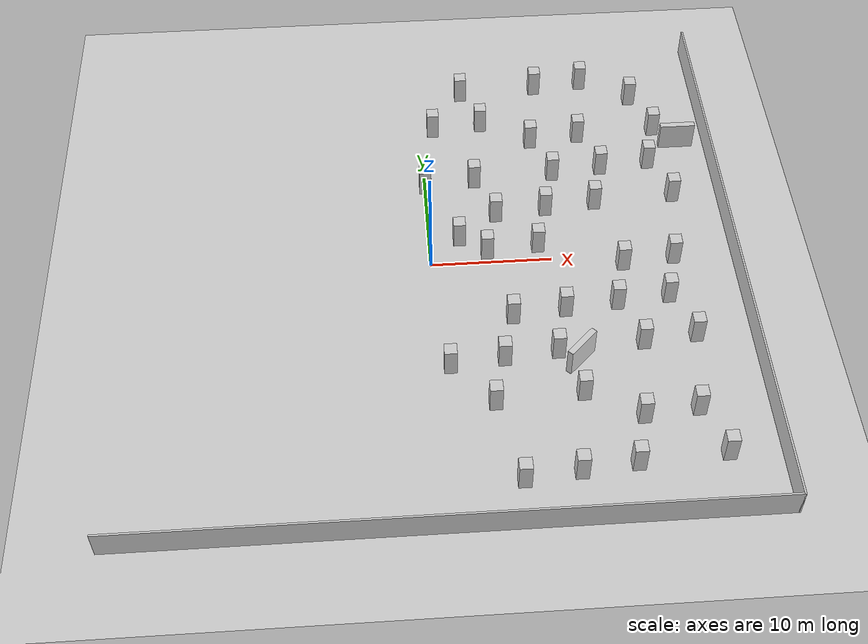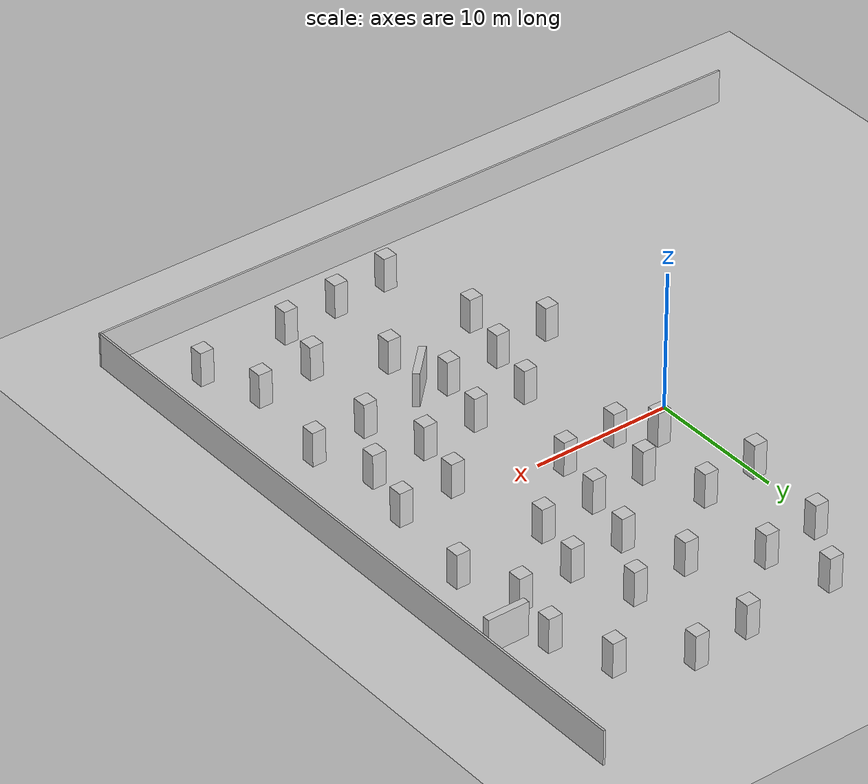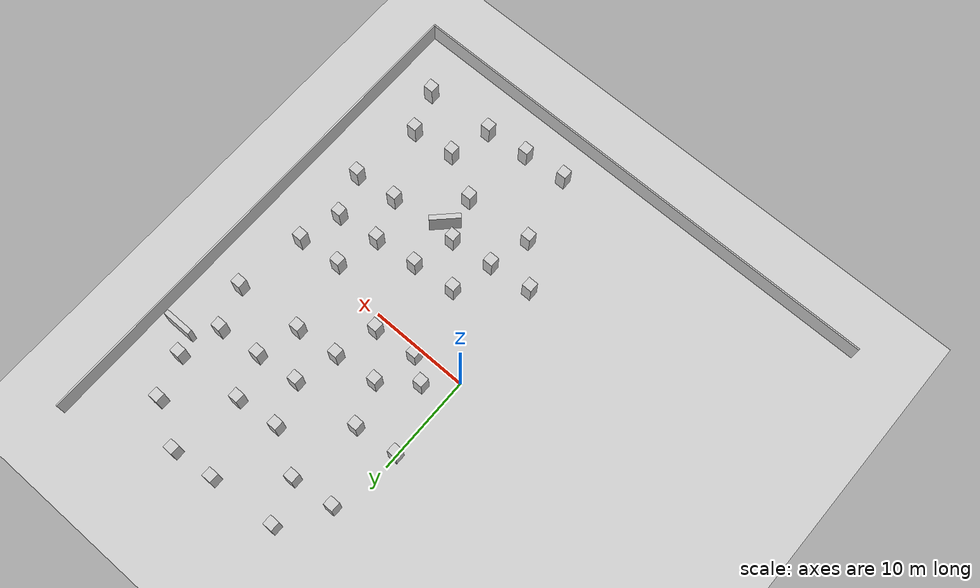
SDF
<sdf version="1.9">
 <world name="default">
  <model name="ground_plane">
   <static>true</static>
   <link name="link">
    <collision name="collision">
     <geometry><plane><normal>0 0 1</normal><size>50 50</size></plane></geometry>
    </collision>
    <visual name="visual">
     <cast_shadows>false</cast_shadows>
     <geometry><plane><normal>0 0 1</normal><size>50 50</size></plane></geometry>
     <material>
      <ambient>0.8 0.8 0.8 1</ambient>
      <diffuse>0.8 0.8 0.8 1</diffuse>
      <specular>0.0 0.0 0.0 1</specular>
      <pbr>
       <metal>
        <albedo_map>file://materials/textures/plank_walls.jpg</albedo_map>
        <roughness>1.0</roughness>
        <metalness>0</metalness>
       </metal>
      </pbr>
     </material>
    </visual>
   </link>
  </model>
  <model name="wall_south">
   <static>true</static>
   <pose>0 -25 0 0 0 0.0</pose>
   <link name="link">
    <collision name="collision">
     <pose>0 0 1.25 0 0 0</pose>
     <geometry><box><size>50.15 0.15 2.5</size></box></geometry>
    </collision>
    <visual name="visual">
     <pose>0 0 1.25 0 0 0</pose>
     <cast_shadows>false</cast_shadows>
     <geometry><box><size>50.15 0.15 2.5</size></box></geometry>
     <material>
      <ambient>0.8 0.8 0.8 1</ambient>
      <diffuse>0.8 0.8 0.8 1</diffuse>
      <specular>0.0 0.0 0.0 1</specular>
      <pbr>
       <metal>
        <albedo_map>file://materials/textures/plaster_bricks.jpg</albedo_map>
        <roughness>1.0</roughness>
        <metalness>0</metalness>
       </metal>
      </pbr>
     </material>
    </visual>
   </link>
  </model>
  <model name="wall_east">
   <static>true</static>
   <pose>25 0 0 0 0 -1.5708</pose>
   <link name="link">
    <collision name="collision">
     <pose>0 0 1.25 0 0 0</pose>
     <geometry><box><size>50.15 0.15 2.5</size></box></geometry>
    </collision>
    <visual name="visual">
     <pose>0 0 1.25 0 0 0</pose>
     <cast_shadows>false</cast_shadows>
     <geometry><box><size>50.15 0.15 2.5</size></box></geometry>
     <material>
      <ambient>0.8 0.8 0.8 1</ambient>
      <diffuse>0.8 0.8 0.8 1</diffuse>
      <specular>0.0 0.0 0.0 1</specular>
      <pbr>
       <metal>
        <albedo_map>file://materials/textures/plaster_bricks.jpg</albedo_map>
        <roughness>1.0</roughness>
        <metalness>0</metalness>
       </metal>
      </pbr>
     </material>
    </visual>
   </link>
  </model>
  <model name="wall_inner_12">
   <static>true</static>
   <pose>22.425 12.700 0 0 0 0.0</pose>
   <link name="link">
    <collision name="collision">
     <pose>0 0 1.25 0 0 0</pose>
     <geometry><box><size>3.0 0.5 2.5</size></box></geometry>
    </collision>
    <visual name="visual">
     <pose>0 0 1.25 0 0 0</pose>
     <cast_shadows>false</cast_shadows>
     <geometry><box><size>3.0 0.5 2.5</size></box></geometry>
     <material>
      <ambient>0.8 0.8 0.8 1</ambient>
      <diffuse>0.8 0.8 0.8 1</diffuse>
      <specular>0.0 0.0 0.0 1</specular>
      <pbr>
       <metal>
        <albedo_map>file://materials/textures/plaster_bricks.jpg</albedo_map>
        <roughness>1.0</roughness>
        <metalness>0</metalness>
       </metal>
      </pbr>
     </material>
    </visual>
   </link>
  </model>
  <model name="wall_inner_13">
   <static>true</static>
   <pose>11.050 -10.550 0 0 0 0.785398</pose>
   <link name="link">
    <collision name="collision">
     <pose>0 0 1.25 0 0 0</pose>
     <geometry><box><size>3.0 0.5 2.5</size></box></geometry>
    </collision>
    <visual name="visual">
     <pose>0 0 1.25 0 0 0</pose>
     <cast_shadows>false</cast_shadows>
     <geometry><box><size>3.0 0.5 2.5</size></box></geometry>
     <material>
      <ambient>0.8 0.8 0.8 1</ambient>
      <diffuse>0.8 0.8 0.8 1</diffuse>
      <specular>0.0 0.0 0.0 1</specular>
      <pbr>
       <metal>
        <albedo_map>file://materials/textures/plaster_bricks.jpg</albedo_map>
        <roughness>1.0</roughness>
        <metalness>0</metalness>
       </metal>
      </pbr>
     </material>
    </visual>
   </link>
  </model>
  <model name="unit_box_38">
   <static>true</static>
   <pose>0.9 -10.6 1.25 0 0 0</pose>
   <link name="link">
    <collision name="collision"><geometry><box><size>1 1 2.5</size></box></geometry></collision>
    <visual name="visual">
     <cast_shadows>false</cast_shadows>
     <geometry><box><size>1 1 2.5</size></box></geometry>
     <material>
      <ambient>0.8 0.8 0.8 1</ambient>
      <diffuse>0.8 0.8 0.8 1</diffuse>
      <specular>0.0 0.0 0.0 1</specular>
      <pbr>
       <metal>
        <albedo_map>file://materials/media/wall3.png</albedo_map>
        <roughness>1.0</roughness>
        <metalness>0</metalness>
       </metal>
      </pbr>
     </material>
    </visual>
   </link>
  </model>
  <model name="unit_box_40">
   <static>true</static>
   <pose>2.5 2.5 1.25 0 0 0</pose>
   <link name="link">
    <collision name="collision"><geometry><box><size>1 1 2.5</size></box></geometry></collision>
    <visual name="visual">
     <cast_shadows>false</cast_shadows>
     <geometry><box><size>1 1 2.5</size></box></geometry>
     <material>
      <ambient>0.8 0.8 0.8 1</ambient>
      <diffuse>0.8 0.8 0.8 1</diffuse>
      <specular>0.0 0.0 0.0 1</specular>
      <pbr>
       <metal>
        <albedo_map>file://materials/media/wall5.png</albedo_map>
        <roughness>1.0</roughness>
        <metalness>0</metalness>
       </metal>
      </pbr>
     </material>
    </visual>
   </link>
  </model>
  <model name="unit_box_42">
   <static>true</static>
   <pose>0.0 8.65 1.25 0 0 0</pose>
   <link name="link">
    <collision name="collision"><geometry><box><size>1 1 2.5</size></box></geometry></collision>
    <visual name="visual">
     <cast_shadows>false</cast_shadows>
     <geometry><box><size>1 1 2.5</size></box></geometry>
     <material>
      <ambient>0.8 0.8 0.8 1</ambient>
      <diffuse>0.8 0.8 0.8 1</diffuse>
      <specular>0.0 0.0 0.0 1</specular>
      <pbr>
       <metal>
        <albedo_map>file://materials/media/wall7.png</albedo_map>
        <roughness>1.0</roughness>
        <metalness>0</metalness>
       </metal>
      </pbr>
     </material>
    </visual>
   </link>
  </model>
  <model name="unit_box_43">
   <static>true</static>
   <pose>1.05 15.6 1.25 0 0 0</pose>
   <link name="link">
    <collision name="collision"><geometry><box><size>1 1 2.5</size></box></geometry></collision>
    <visual name="visual">
     <cast_shadows>false</cast_shadows>
     <geometry><box><size>1 1 2.5</size></box></geometry>
     <material>
      <ambient>0.8 0.8 0.8 1</ambient>
      <diffuse>0.8 0.8 0.8 1</diffuse>
      <specular>0.0 0.0 0.0 1</specular>
      <pbr>
       <metal>
        <albedo_map>file://materials/media/wall8.png</albedo_map>
        <roughness>1.0</roughness>
        <metalness>0</metalness>
       </metal>
      </pbr>
     </material>
    </visual>
   </link>
  </model>
  <model name="unit_box_45">
   <static>true</static>
   <pose>5.6 -21.2 1.25 0 0 0</pose>
   <link name="link">
    <collision name="collision"><geometry><box><size>1 1 2.5</size></box></geometry></collision>
    <visual name="visual">
     <cast_shadows>false</cast_shadows>
     <geometry><box><size>1 1 2.5</size></box></geometry>
     <material>
      <ambient>0.8 0.8 0.8 1</ambient>
      <diffuse>0.8 0.8 0.8 1</diffuse>
      <specular>0.0 0.0 0.0 1</specular>
      <pbr>
       <metal>
        <albedo_map>file://materials/media/wall10.png</albedo_map>
        <roughness>1.0</roughness>
        <metalness>0</metalness>
       </metal>
      </pbr>
     </material>
    </visual>
   </link>
  </model>
  <model name="unit_box_46">
   <static>true</static>
   <pose>4.1 -14.25 1.25 0 0 0</pose>
   <link name="link">
    <collision name="collision"><geometry><box><size>1 1 2.5</size></box></geometry></collision>
    <visual name="visual">
     <cast_shadows>false</cast_shadows>
     <geometry><box><size>1 1 2.5</size></box></geometry>
     <material>
      <ambient>0.8 0.8 0.8 1</ambient>
      <diffuse>0.8 0.8 0.8 1</diffuse>
      <specular>0.0 0.0 0.0 1</specular>
      <pbr>
       <metal>
        <albedo_map>file://materials/media/wall11.png</albedo_map>
        <roughness>1.0</roughness>
        <metalness>0</metalness>
       </metal>
      </pbr>
     </material>
    </visual>
   </link>
  </model>
  <model name="unit_box_47">
   <static>true</static>
   <pose>5.15 -10.15 1.25 0 0 0</pose>
   <link name="link">
    <collision name="collision"><geometry><box><size>1 1 2.5</size></box></geometry></collision>
    <visual name="visual">
     <cast_shadows>false</cast_shadows>
     <geometry><box><size>1 1 2.5</size></box></geometry>
     <material>
      <ambient>0.8 0.8 0.8 1</ambient>
      <diffuse>0.8 0.8 0.8 1</diffuse>
      <specular>0.0 0.0 0.0 1</specular>
      <pbr>
       <metal>
        <albedo_map>file://materials/media/wall12.png</albedo_map>
        <roughness>1.0</roughness>
        <metalness>0</metalness>
       </metal>
      </pbr>
     </material>
    </visual>
   </link>
  </model>
  <model name="unit_box_48">
   <static>true</static>
   <pose>6.2 -6.05 1.25 0 0 0</pose>
   <link name="link">
    <collision name="collision"><geometry><box><size>1 1 2.5</size></box></geometry></collision>
    <visual name="visual">
     <cast_shadows>false</cast_shadows>
     <geometry><box><size>1 1 2.5</size></box></geometry>
     <material>
      <ambient>0.8 0.8 0.8 1</ambient>
      <diffuse>0.8 0.8 0.8 1</diffuse>
      <specular>0.0 0.0 0.0 1</specular>
      <pbr>
       <metal>
        <albedo_map>file://materials/media/wall13.png</albedo_map>
        <roughness>1.0</roughness>
        <metalness>0</metalness>
       </metal>
      </pbr>
     </material>
    </visual>
   </link>
  </model>
  <model name="unit_box_49">
   <static>true</static>
   <pose>4.7 0.9 1.25 0 0 0</pose>
   <link name="link">
    <collision name="collision"><geometry><box><size>1 1 2.5</size></box></geometry></collision>
    <visual name="visual">
     <cast_shadows>false</cast_shadows>
     <geometry><box><size>1 1 2.5</size></box></geometry>
     <material>
      <ambient>0.8 0.8 0.8 1</ambient>
      <diffuse>0.8 0.8 0.8 1</diffuse>
      <specular>0.0 0.0 0.0 1</specular>
      <pbr>
       <metal>
        <albedo_map>file://materials/media/wall14.png</albedo_map>
        <roughness>1.0</roughness>
        <metalness>0</metalness>
       </metal>
      </pbr>
     </material>
    </visual>
   </link>
  </model>
  <model name="unit_box_50">
   <static>true</static>
   <pose>5.75 5.0 1.25 0 0 0</pose>
   <link name="link">
    <collision name="collision"><geometry><box><size>1 1 2.5</size></box></geometry></collision>
    <visual name="visual">
     <cast_shadows>false</cast_shadows>
     <geometry><box><size>1 1 2.5</size></box></geometry>
     <material>
      <ambient>0.8 0.8 0.8 1</ambient>
      <diffuse>0.8 0.8 0.8 1</diffuse>
      <specular>0.0 0.0 0.0 1</specular>
      <pbr>
       <metal>
        <albedo_map>file://materials/media/wall15.png</albedo_map>
        <roughness>1.0</roughness>
        <metalness>0</metalness>
       </metal>
      </pbr>
     </material>
    </visual>
   </link>
  </model>
  <model name="unit_box_51">
   <static>true</static>
   <pose>4.25 9.1 1.25 0 0 0</pose>
   <link name="link">
    <collision name="collision"><geometry><box><size>1 1 2.5</size></box></geometry></collision>
    <visual name="visual">
     <cast_shadows>false</cast_shadows>
     <geometry><box><size>1 1 2.5</size></box></geometry>
     <material>
      <ambient>0.8 0.8 0.8 1</ambient>
      <diffuse>0.8 0.8 0.8 1</diffuse>
      <specular>0.0 0.0 0.0 1</specular>
      <pbr>
       <metal>
        <albedo_map>file://materials/media/wall16.png</albedo_map>
        <roughness>1.0</roughness>
        <metalness>0</metalness>
       </metal>
      </pbr>
     </material>
    </visual>
   </link>
  </model>
  <model name="unit_box_52">
   <static>true</static>
   <pose>5.3 16.05 1.25 0 0 0</pose>
   <link name="link">
    <collision name="collision"><geometry><box><size>1 1 2.5</size></box></geometry></collision>
    <visual name="visual">
     <cast_shadows>false</cast_shadows>
     <geometry><box><size>1 1 2.5</size></box></geometry>
     <material>
      <ambient>0.8 0.8 0.8 1</ambient>
      <diffuse>0.8 0.8 0.8 1</diffuse>
      <specular>0.0 0.0 0.0 1</specular>
      <pbr>
       <metal>
        <albedo_map>file://materials/media/wall17.png</albedo_map>
        <roughness>1.0</roughness>
        <metalness>0</metalness>
       </metal>
      </pbr>
     </material>
    </visual>
   </link>
  </model>
  <model name="unit_box_53">
   <static>true</static>
   <pose>3.8 20.15 1.25 0 0 0</pose>
   <link name="link">
    <collision name="collision"><geometry><box><size>1 1 2.5</size></box></geometry></collision>
    <visual name="visual">
     <cast_shadows>false</cast_shadows>
     <geometry><box><size>1 1 2.5</size></box></geometry>
     <material>
      <ambient>0.8 0.8 0.8 1</ambient>
      <diffuse>0.8 0.8 0.8 1</diffuse>
      <specular>0.0 0.0 0.0 1</specular>
      <pbr>
       <metal>
        <albedo_map>file://materials/media/wall18.png</albedo_map>
        <roughness>1.0</roughness>
        <metalness>0</metalness>
       </metal>
      </pbr>
     </material>
    </visual>
   </link>
  </model>
  <model name="unit_box_54">
   <static>true</static>
   <pose>9.85 -20.75 1.25 0 0 0</pose>
   <link name="link">
    <collision name="collision"><geometry><box><size>1 1 2.5</size></box></geometry></collision>
    <visual name="visual">
     <cast_shadows>false</cast_shadows>
     <geometry><box><size>1 1 2.5</size></box></geometry>
     <material>
      <ambient>0.8 0.8 0.8 1</ambient>
      <diffuse>0.8 0.8 0.8 1</diffuse>
      <specular>0.0 0.0 0.0 1</specular>
      <pbr>
       <metal>
        <albedo_map>file://materials/media/wall19.png</albedo_map>
        <roughness>1.0</roughness>
        <metalness>0</metalness>
       </metal>
      </pbr>
     </material>
    </visual>
   </link>
  </model>
  <model name="unit_box_55">
   <static>true</static>
   <pose>10.9 -13.8 1.25 0 0 0</pose>
   <link name="link">
    <collision name="collision"><geometry><box><size>1 1 2.5</size></box></geometry></collision>
    <visual name="visual">
     <cast_shadows>false</cast_shadows>
     <geometry><box><size>1 1 2.5</size></box></geometry>
     <material>
      <ambient>0.8 0.8 0.8 1</ambient>
      <diffuse>0.8 0.8 0.8 1</diffuse>
      <specular>0.0 0.0 0.0 1</specular>
      <pbr>
       <metal>
        <albedo_map>file://materials/media/wall20.png</albedo_map>
        <roughness>1.0</roughness>
        <metalness>0</metalness>
       </metal>
      </pbr>
     </material>
    </visual>
   </link>
  </model>
  <model name="unit_box_56">
   <static>true</static>
   <pose>9.4 -9.7 1.25 0 0 0</pose>
   <link name="link">
    <collision name="collision"><geometry><box><size>1 1 2.5</size></box></geometry></collision>
    <visual name="visual">
     <cast_shadows>false</cast_shadows>
     <geometry><box><size>1 1 2.5</size></box></geometry>
     <material>
      <ambient>0.8 0.8 0.8 1</ambient>
      <diffuse>0.8 0.8 0.8 1</diffuse>
      <specular>0.0 0.0 0.0 1</specular>
      <pbr>
       <metal>
        <albedo_map>file://materials/media/wall21.png</albedo_map>
        <roughness>1.0</roughness>
        <metalness>0</metalness>
       </metal>
      </pbr>
     </material>
    </visual>
   </link>
  </model>
  <model name="unit_box_57">
   <static>true</static>
   <pose>10.45 -5.6 1.25 0 0 0</pose>
   <link name="link">
    <collision name="collision"><geometry><box><size>1 1 2.5</size></box></geometry></collision>
    <visual name="visual">
     <cast_shadows>false</cast_shadows>
     <geometry><box><size>1 1 2.5</size></box></geometry>
     <material>
      <ambient>0.8 0.8 0.8 1</ambient>
      <diffuse>0.8 0.8 0.8 1</diffuse>
      <specular>0.0 0.0 0.0 1</specular>
      <pbr>
       <metal>
        <albedo_map>file://materials/media/wall22.png</albedo_map>
        <roughness>1.0</roughness>
        <metalness>0</metalness>
       </metal>
      </pbr>
     </material>
    </visual>
   </link>
  </model>
  <model name="unit_box_58">
   <static>true</static>
   <pose>8.95 1.35 1.25 0 0 0</pose>
   <link name="link">
    <collision name="collision"><geometry><box><size>1 1 2.5</size></box></geometry></collision>
    <visual name="visual">
     <cast_shadows>false</cast_shadows>
     <geometry><box><size>1 1 2.5</size></box></geometry>
     <material>
      <ambient>0.8 0.8 0.8 1</ambient>
      <diffuse>0.8 0.8 0.8 1</diffuse>
      <specular>0.0 0.0 0.0 1</specular>
      <pbr>
       <metal>
        <albedo_map>file://materials/media/wall23.png</albedo_map>
        <roughness>1.0</roughness>
        <metalness>0</metalness>
       </metal>
      </pbr>
     </material>
    </visual>
   </link>
  </model>
  <model name="unit_box_59">
   <static>true</static>
   <pose>10.0 5.45 1.25 0 0 0</pose>
   <link name="link">
    <collision name="collision"><geometry><box><size>1 1 2.5</size></box></geometry></collision>
    <visual name="visual">
     <cast_shadows>false</cast_shadows>
     <geometry><box><size>1 1 2.5</size></box></geometry>
     <material>
      <ambient>0.8 0.8 0.8 1</ambient>
      <diffuse>0.8 0.8 0.8 1</diffuse>
      <specular>0.0 0.0 0.0 1</specular>
      <pbr>
       <metal>
        <albedo_map>file://materials/media/wall24.png</albedo_map>
        <roughness>1.0</roughness>
        <metalness>0</metalness>
       </metal>
      </pbr>
     </material>
    </visual>
   </link>
  </model>
  <model name="unit_box_60">
   <static>true</static>
   <pose>11.05 9.55 1.25 0 0 0</pose>
   <link name="link">
    <collision name="collision"><geometry><box><size>1 1 2.5</size></box></geometry></collision>
    <visual name="visual">
     <cast_shadows>false</cast_shadows>
     <geometry><box><size>1 1 2.5</size></box></geometry>
     <material>
      <ambient>0.8 0.8 0.8 1</ambient>
      <diffuse>0.8 0.8 0.8 1</diffuse>
      <specular>0.0 0.0 0.0 1</specular>
      <pbr>
       <metal>
        <albedo_map>file://materials/media/wall25.png</albedo_map>
        <roughness>1.0</roughness>
        <metalness>0</metalness>
       </metal>
      </pbr>
     </material>
    </visual>
   </link>
  </model>
  <model name="unit_box_61">
   <static>true</static>
   <pose>9.55 13.65 1.25 0 0 0</pose>
   <link name="link">
    <collision name="collision"><geometry><box><size>1 1 2.5</size></box></geometry></collision>
    <visual name="visual">
     <cast_shadows>false</cast_shadows>
     <geometry><box><size>1 1 2.5</size></box></geometry>
     <material>
      <ambient>0.8 0.8 0.8 1</ambient>
      <diffuse>0.8 0.8 0.8 1</diffuse>
      <specular>0.0 0.0 0.0 1</specular>
      <pbr>
       <metal>
        <albedo_map>file://materials/media/wall26.png</albedo_map>
        <roughness>1.0</roughness>
        <metalness>0</metalness>
       </metal>
      </pbr>
     </material>
    </visual>
   </link>
  </model>
  <model name="unit_box_62">
   <static>true</static>
   <pose>10.6 20.6 1.25 0 0 0</pose>
   <link name="link">
    <collision name="collision"><geometry><box><size>1 1 2.5</size></box></geometry></collision>
    <visual name="visual">
     <cast_shadows>false</cast_shadows>
     <geometry><box><size>1 1 2.5</size></box></geometry>
     <material>
      <ambient>0.8 0.8 0.8 1</ambient>
      <diffuse>0.8 0.8 0.8 1</diffuse>
      <specular>0.0 0.0 0.0 1</specular>
      <pbr>
       <metal>
        <albedo_map>file://materials/media/wall27.png</albedo_map>
        <roughness>1.0</roughness>
        <metalness>0</metalness>
       </metal>
      </pbr>
     </material>
    </visual>
   </link>
  </model>
  <model name="unit_box_63">
   <static>true</static>
   <pose>14.1 -20.3 1.25 0 0 0</pose>
   <link name="link">
    <collision name="collision"><geometry><box><size>1 1 2.5</size></box></geometry></collision>
    <visual name="visual">
     <cast_shadows>false</cast_shadows>
     <geometry><box><size>1 1 2.5</size></box></geometry>
     <material>
      <ambient>0.8 0.8 0.8 1</ambient>
      <diffuse>0.8 0.8 0.8 1</diffuse>
      <specular>0.0 0.0 0.0 1</specular>
      <pbr>
       <metal>
        <albedo_map>file://materials/media/wall28.png</albedo_map>
        <roughness>1.0</roughness>
        <metalness>0</metalness>
       </metal>
      </pbr>
     </material>
    </visual>
   </link>
  </model>
  <model name="unit_box_64">
   <static>true</static>
   <pose>15.15 -16.2 1.25 0 0 0</pose>
   <link name="link">
    <collision name="collision"><geometry><box><size>1 1 2.5</size></box></geometry></collision>
    <visual name="visual">
     <cast_shadows>false</cast_shadows>
     <geometry><box><size>1 1 2.5</size></box></geometry>
     <material>
      <ambient>0.8 0.8 0.8 1</ambient>
      <diffuse>0.8 0.8 0.8 1</diffuse>
      <specular>0.0 0.0 0.0 1</specular>
      <pbr>
       <metal>
        <albedo_map>file://materials/media/wall29.png</albedo_map>
        <roughness>1.0</roughness>
        <metalness>0</metalness>
       </metal>
      </pbr>
     </material>
    </visual>
   </link>
  </model>
  <model name="unit_box_65">
   <static>true</static>
   <pose>16.2 -9.25 1.25 0 0 0</pose>
   <link name="link">
    <collision name="collision"><geometry><box><size>1 1 2.5</size></box></geometry></collision>
    <visual name="visual">
     <cast_shadows>false</cast_shadows>
     <geometry><box><size>1 1 2.5</size></box></geometry>
     <material>
      <ambient>0.8 0.8 0.8 1</ambient>
      <diffuse>0.8 0.8 0.8 1</diffuse>
      <specular>0.0 0.0 0.0 1</specular>
      <pbr>
       <metal>
        <albedo_map>file://materials/media/wall30.png</albedo_map>
        <roughness>1.0</roughness>
        <metalness>0</metalness>
       </metal>
      </pbr>
     </material>
    </visual>
   </link>
  </model>
  <model name="unit_box_66">
   <static>true</static>
   <pose>14.7 -5.15 1.25 0 0 0</pose>
   <link name="link">
    <collision name="collision"><geometry><box><size>1 1 2.5</size></box></geometry></collision>
    <visual name="visual">
     <cast_shadows>false</cast_shadows>
     <geometry><box><size>1 1 2.5</size></box></geometry>
     <material>
      <ambient>0.8 0.8 0.8 1</ambient>
      <diffuse>0.8 0.8 0.8 1</diffuse>
      <specular>0.0 0.0 0.0 1</specular>
      <pbr>
       <metal>
        <albedo_map>file://materials/media/wall31.png</albedo_map>
        <roughness>1.0</roughness>
        <metalness>0</metalness>
       </metal>
      </pbr>
     </material>
    </visual>
   </link>
  </model>
  <model name="unit_box_67">
   <static>true</static>
   <pose>15.75 -1.05 1.25 0 0 0</pose>
   <link name="link">
    <collision name="collision"><geometry><box><size>1 1 2.5</size></box></geometry></collision>
    <visual name="visual">
     <cast_shadows>false</cast_shadows>
     <geometry><box><size>1 1 2.5</size></box></geometry>
     <material>
      <ambient>0.8 0.8 0.8 1</ambient>
      <diffuse>0.8 0.8 0.8 1</diffuse>
      <specular>0.0 0.0 0.0 1</specular>
      <pbr>
       <metal>
        <albedo_map>file://materials/media/wall32.png</albedo_map>
        <roughness>1.0</roughness>
        <metalness>0</metalness>
       </metal>
      </pbr>
     </material>
    </visual>
   </link>
  </model>
  <model name="unit_box_68">
   <static>true</static>
   <pose>14.25 5.9 1.25 0 0 0</pose>
   <link name="link">
    <collision name="collision"><geometry><box><size>1 1 2.5</size></box></geometry></collision>
    <visual name="visual">
     <cast_shadows>false</cast_shadows>
     <geometry><box><size>1 1 2.5</size></box></geometry>
     <material>
      <ambient>0.8 0.8 0.8 1</ambient>
      <diffuse>0.8 0.8 0.8 1</diffuse>
      <specular>0.0 0.0 0.0 1</specular>
      <pbr>
       <metal>
        <albedo_map>file://materials/media/wall33.png</albedo_map>
        <roughness>1.0</roughness>
        <metalness>0</metalness>
       </metal>
      </pbr>
     </material>
    </visual>
   </link>
  </model>
  <model name="unit_box_69">
   <static>true</static>
   <pose>15.3 10.0 1.25 0 0 0</pose>
   <link name="link">
    <collision name="collision"><geometry><box><size>1 1 2.5</size></box></geometry></collision>
    <visual name="visual">
     <cast_shadows>false</cast_shadows>
     <geometry><box><size>1 1 2.5</size></box></geometry>
     <material>
      <ambient>0.8 0.8 0.8 1</ambient>
      <diffuse>0.8 0.8 0.8 1</diffuse>
      <specular>0.0 0.0 0.0 1</specular>
      <pbr>
       <metal>
        <albedo_map>file://materials/media/wall34.png</albedo_map>
        <roughness>1.0</roughness>
        <metalness>0</metalness>
       </metal>
      </pbr>
     </material>
    </visual>
   </link>
  </model>
  <model name="unit_box_70">
   <static>true</static>
   <pose>13.8 14.1 1.25 0 0 0</pose>
   <link name="link">
    <collision name="collision"><geometry><box><size>1 1 2.5</size></box></geometry></collision>
    <visual name="visual">
     <cast_shadows>false</cast_shadows>
     <geometry><box><size>1 1 2.5</size></box></geometry>
     <material>
      <ambient>0.8 0.8 0.8 1</ambient>
      <diffuse>0.8 0.8 0.8 1</diffuse>
      <specular>0.0 0.0 0.0 1</specular>
      <pbr>
       <metal>
        <albedo_map>file://materials/media/wall35.png</albedo_map>
        <roughness>1.0</roughness>
        <metalness>0</metalness>
       </metal>
      </pbr>
     </material>
    </visual>
   </link>
  </model>
  <model name="unit_box_71">
   <static>true</static>
   <pose>14.85 21.05 1.25 0 0 0</pose>
   <link name="link">
    <collision name="collision"><geometry><box><size>1 1 2.5</size></box></geometry></collision>
    <visual name="visual">
     <cast_shadows>false</cast_shadows>
     <geometry><box><size>1 1 2.5</size></box></geometry>
     <material>
      <ambient>0.8 0.8 0.8 1</ambient>
      <diffuse>0.8 0.8 0.8 1</diffuse>
      <specular>0.0 0.0 0.0 1</specular>
      <pbr>
       <metal>
        <albedo_map>file://materials/media/wall36.png</albedo_map>
        <roughness>1.0</roughness>
        <metalness>0</metalness>
       </metal>
      </pbr>
     </material>
    </visual>
   </link>
  </model>
  <model name="unit_box_72">
   <static>true</static>
   <pose>20.9 -19.85 1.25 0 0 0</pose>
   <link name="link">
    <collision name="collision"><geometry><box><size>1 1 2.5</size></box></geometry></collision>
    <visual name="visual">
     <cast_shadows>false</cast_shadows>
     <geometry><box><size>1 1 2.5</size></box></geometry>
     <material>
      <ambient>0.8 0.8 0.8 1</ambient>
      <diffuse>0.8 0.8 0.8 1</diffuse>
      <specular>0.0 0.0 0.0 1</specular>
      <pbr>
       <metal>
        <albedo_map>file://materials/media/wall1.png</albedo_map>
        <roughness>1.0</roughness>
        <metalness>0</metalness>
       </metal>
      </pbr>
     </material>
    </visual>
   </link>
  </model>
  <model name="unit_box_73">
   <static>true</static>
   <pose>19.4 -15.75 1.25 0 0 0</pose>
   <link name="link">
    <collision name="collision"><geometry><box><size>1 1 2.5</size></box></geometry></collision>
    <visual name="visual">
     <cast_shadows>false</cast_shadows>
     <geometry><box><size>1 1 2.5</size></box></geometry>
     <material>
      <ambient>0.8 0.8 0.8 1</ambient>
      <diffuse>0.8 0.8 0.8 1</diffuse>
      <specular>0.0 0.0 0.0 1</specular>
      <pbr>
       <metal>
        <albedo_map>file://materials/media/wall2.png</albedo_map>
        <roughness>1.0</roughness>
        <metalness>0</metalness>
       </metal>
      </pbr>
     </material>
    </visual>
   </link>
  </model>
  <model name="unit_box_74">
   <static>true</static>
   <pose>20.45 -8.8 1.25 0 0 0</pose>
   <link name="link">
    <collision name="collision"><geometry><box><size>1 1 2.5</size></box></geometry></collision>
    <visual name="visual">
     <cast_shadows>false</cast_shadows>
     <geometry><box><size>1 1 2.5</size></box></geometry>
     <material>
      <ambient>0.8 0.8 0.8 1</ambient>
      <diffuse>0.8 0.8 0.8 1</diffuse>
      <specular>0.0 0.0 0.0 1</specular>
      <pbr>
       <metal>
        <albedo_map>file://materials/media/wall3.png</albedo_map>
        <roughness>1.0</roughness>
        <metalness>0</metalness>
       </metal>
      </pbr>
     </material>
    </visual>
   </link>
  </model>
  <model name="unit_box_75">
   <static>true</static>
   <pose>18.95 -4.7 1.25 0 0 0</pose>
   <link name="link">
    <collision name="collision"><geometry><box><size>1 1 2.5</size></box></geometry></collision>
    <visual name="visual">
     <cast_shadows>false</cast_shadows>
     <geometry><box><size>1 1 2.5</size></box></geometry>
     <material>
      <ambient>0.8 0.8 0.8 1</ambient>
      <diffuse>0.8 0.8 0.8 1</diffuse>
      <specular>0.0 0.0 0.0 1</specular>
      <pbr>
       <metal>
        <albedo_map>file://materials/media/wall4.png</albedo_map>
        <roughness>1.0</roughness>
        <metalness>0</metalness>
       </metal>
      </pbr>
     </material>
    </visual>
   </link>
  </model>
  <model name="unit_box_76">
   <static>true</static>
   <pose>20.0 -0.6 1.25 0 0 0</pose>
   <link name="link">
    <collision name="collision"><geometry><box><size>1 1 2.5</size></box></geometry></collision>
    <visual name="visual">
     <cast_shadows>false</cast_shadows>
     <geometry><box><size>1 1 2.5</size></box></geometry>
     <material>
      <ambient>0.8 0.8 0.8 1</ambient>
      <diffuse>0.8 0.8 0.8 1</diffuse>
      <specular>0.0 0.0 0.0 1</specular>
      <pbr>
       <metal>
        <albedo_map>file://materials/media/wall5.png</albedo_map>
        <roughness>1.0</roughness>
        <metalness>0</metalness>
       </metal>
      </pbr>
     </material>
    </visual>
   </link>
  </model>
  <model name="unit_box_77">
   <static>true</static>
   <pose>21.05 6.35 1.25 0 0 0</pose>
   <link name="link">
    <collision name="collision"><geometry><box><size>1 1 2.5</size></box></geometry></collision>
    <visual name="visual">
     <cast_shadows>false</cast_shadows>
     <geometry><box><size>1 1 2.5</size></box></geometry>
     <material>
      <ambient>0.8 0.8 0.8 1</ambient>
      <diffuse>0.8 0.8 0.8 1</diffuse>
      <specular>0.0 0.0 0.0 1</specular>
      <pbr>
       <metal>
        <albedo_map>file://materials/media/wall6.png</albedo_map>
        <roughness>1.0</roughness>
        <metalness>0</metalness>
       </metal>
      </pbr>
     </material>
    </visual>
   </link>
  </model>
  <model name="unit_box_78">
   <static>true</static>
   <pose>19.55 10.45 1.25 0 0 0</pose>
   <link name="link">
    <collision name="collision"><geometry><box><size>1 1 2.5</size></box></geometry></collision>
    <visual name="visual">
     <cast_shadows>false</cast_shadows>
     <geometry><box><size>1 1 2.5</size></box></geometry>
     <material>
      <ambient>0.8 0.8 0.8 1</ambient>
      <diffuse>0.8 0.8 0.8 1</diffuse>
      <specular>0.0 0.0 0.0 1</specular>
      <pbr>
       <metal>
        <albedo_map>file://materials/media/wall7.png</albedo_map>
        <roughness>1.0</roughness>
        <metalness>0</metalness>
       </metal>
      </pbr>
     </material>
    </visual>
   </link>
  </model>
  <model name="unit_box_79">
   <static>true</static>
   <pose>20.6 14.55 1.25 0 0 0</pose>
   <link name="link">
    <collision name="collision"><geometry><box><size>1 1 2.5</size></box></geometry></collision>
    <visual name="visual">
     <cast_shadows>false</cast_shadows>
     <geometry><box><size>1 1 2.5</size></box></geometry>
     <material>
      <ambient>0.8 0.8 0.8 1</ambient>
      <diffuse>0.8 0.8 0.8 1</diffuse>
      <specular>0.0 0.0 0.0 1</specular>
      <pbr>
       <metal>
        <albedo_map>file://materials/media/wall8.png</albedo_map>
        <roughness>1.0</roughness>
        <metalness>0</metalness>
       </metal>
      </pbr>
     </material>
    </visual>
   </link>
  </model>
  <model name="unit_box_80">
   <static>true</static>
   <pose>19.1 18.65 1.25 0 0 0</pose>
   <link name="link">
    <collision name="collision"><geometry><box><size>1 1 2.5</size></box></geometry></collision>
    <visual name="visual">
     <cast_shadows>false</cast_shadows>
     <geometry><box><size>1 1 2.5</size></box></geometry>
     <material>
      <ambient>0.8 0.8 0.8 1</ambient>
      <diffuse>0.8 0.8 0.8 1</diffuse>
      <specular>0.0 0.0 0.0 1</specular>
      <pbr>
       <metal>
        <albedo_map>file://materials/media/wall9.png</albedo_map>
        <roughness>1.0</roughness>
        <metalness>0</metalness>
       </metal>
      </pbr>
     </material>
    </visual>
   </link>
  </model>
 </world>
</sdf>
